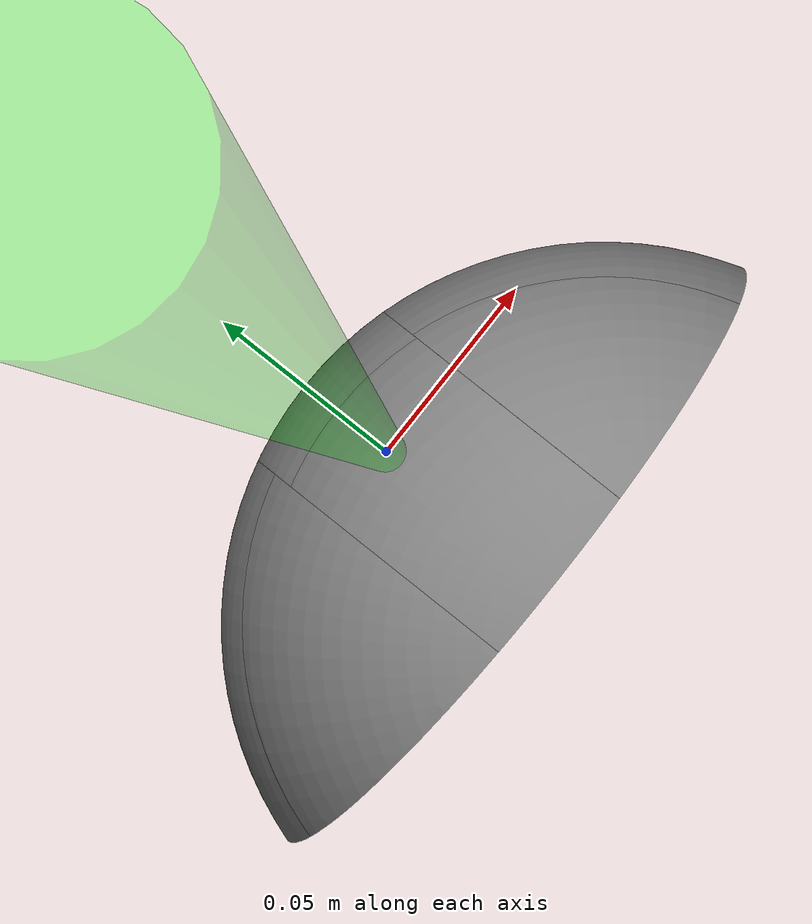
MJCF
<mujoco model="custom_hand">
   <asset>
       <!-- Original asset -->

       <!-- NEW ASSETS: Add all 15 parts here -->
       <mesh name="part1"  file="custom_gripper_parts/ball_thrower_after_coacd - Part 1.stl" scale="0.001 0.001 0.001"/>
       <mesh name="part2"  file="custom_gripper_parts/ball_thrower_after_coacd - Part 2.stl" scale="0.001 0.001 0.001"/>
       <mesh name="part3"  file="custom_gripper_parts/ball_thrower_after_coacd - Part 3.stl" scale="0.001 0.001 0.001"/>
       <mesh name="part4"  file="custom_gripper_parts/ball_thrower_after_coacd - Part 4.stl" scale="0.001 0.001 0.001"/>
       <mesh name="part5"  file="custom_gripper_parts/ball_thrower_after_coacd - Part 5.stl" scale="0.001 0.001 0.001"/>
       <mesh name="part6"  file="custom_gripper_parts/ball_thrower_after_coacd - Part 6.stl" scale="0.001 0.001 0.001"/>
       <mesh name="part7"  file="custom_gripper_parts/ball_thrower_after_coacd - Part 7.stl" scale="0.001 0.001 0.001"/>
       <mesh name="part8"  file="custom_gripper_parts/ball_thrower_after_coacd - Part 8.stl" scale="0.001 0.001 0.001"/>
       <mesh name="part9"  file="custom_gripper_parts/ball_thrower_after_coacd - Part 9.stl" scale="0.001 0.001 0.001"/>
       <mesh name="part10" file="custom_gripper_parts/ball_thrower_after_coacd - Part 10.stl" scale="0.001 0.001 0.001"/>
       <mesh name="part11" file="custom_gripper_parts/ball_thrower_after_coacd - Part 11.stl" scale="0.001 0.001 0.001"/>
       <mesh name="part12" file="custom_gripper_parts/ball_thrower_after_coacd - Part 12.stl" scale="0.001 0.001 0.001"/>
       <mesh name="part13" file="custom_gripper_parts/ball_thrower_after_coacd - Part 13.stl" scale="0.001 0.001 0.001"/>
       <mesh name="part14" file="custom_gripper_parts/ball_thrower_after_coacd - Part 14.stl" scale="0.001 0.001 0.001"/>
       <mesh name="part15" file="custom_gripper_parts/ball_thrower_after_coacd - Part 15.stl" scale="0.001 0.001 0.001"/>
   </asset>
   <worldbody>
       <!-- The right_gripper body acts as the container/link for all parts -->
       <body name="right_gripper" pos="0 0 0" quat="-0.707107 0 0 0.707107">

           <!-- Original Geoms referencing the 'hand' mesh -->

           <!-- NEW GEOMS: Instantiate the parts in the world -->
           <!-- You likely want all these parts to move with the 'right_gripper' body,
                so you place the geom tags inside the 'right_gripper' body tag. -->
           <geom pos="0 0 0." quat="0.707107 0 0 0.707107" type="mesh" mesh="part1" group="1" name="part1_visual"/>
           <geom pos="0 0 0." quat="0.707107 0 0 0.707107" type="mesh" mesh="part2" group="1" name="part2_visual"/>
           <geom pos="0 0 0." quat="0.707107 0 0 0.707107" type="mesh" mesh="part3" group="1" name="part3_visual"/>
           <geom pos="0 0 0." quat="0.707107 0 0 0.707107" type="mesh" mesh="part4" group="1" name="part4_visual"/>
           <geom pos="0 0 0." quat="0.707107 0 0 0.707107" type="mesh" mesh="part5" group="1" name="part5_visual"/>
           <geom pos="0 0 0." quat="0.707107 0 0 0.707107" type="mesh" mesh="part6" group="1" name="part6_visual"/>
           <geom pos="0 0 0." quat="0.707107 0 0 0.707107" type="mesh" mesh="part7" group="1" name="part7_visual"/>
           <geom pos="0 0 0." quat="0.707107 0 0 0.707107" type="mesh" mesh="part8" group="1" name="part8_visual"/>
           <geom pos="0 0 0." quat="0.707107 0 0 0.707107" type="mesh" mesh="part9" group="1" name="part9_visual"/>
           <geom pos="0 0 0." quat="0.707107 0 0 0.707107" type="mesh" mesh="part10" group="1" name="part10_visual"/>
           <geom pos="0 0 0." quat="0.707107 0 0 0.707107" type="mesh" mesh="part11" group="1" name="part11_visual"/>
           <geom pos="0 0 0." quat="0.707107 0 0 0.707107" type="mesh" mesh="part12" group="1" name="part12_visual"/>
           <geom pos="0 0 0." quat="0.707107 0 0 0.707107" type="mesh" mesh="part13" group="1" name="part13_visual"/>
           <geom pos="0 0 0." quat="0.707107 0 0 0.707107" type="mesh" mesh="part14" group="1" name="part14_visual"/>
           <geom pos="0 0 0." quat="0.707107 0 0 0.707107" type="mesh" mesh="part15" group="1" name="part15_visual"/>

           <!-- Sites definition remains the same -->
           <body name="eef" pos="0 0 0.097" quat="1 0 0 0">
               <!-- ... (sites definitions omitted for brevity) ... -->
               <site name="grip_site" pos="0 0 0" size="0.01 0.01 0.01" rgba="1 0 0 0.5" type="sphere" group="1"/>
               <site name="ee_x" pos="0.1 0 0" size="0.005 .1"  quat="0.707105  0 0.707108 0 " rgba="1 0 0 0" type="cylinder" group="1"/>
               <site name="ee_y" pos="0 0.1 0" size="0.005 .1" quat="0.707105 0.707108 0 0" rgba="0 1 0 0" type="cylinder" group="1"/>
               <site name="ee_z" pos="0 0 0.1" size="0.005 .1" quat="1 0 0 0" rgba="0 0 1 0" type="cylinder" group="1"/>
               <site name="grip_site_cylinder" pos="0 0 0" size="0.005 10" rgba="0 1 0 0.3" type="cylinder" group="1"/>
           </body>
       </body>
   </worldbody>
</mujoco>
